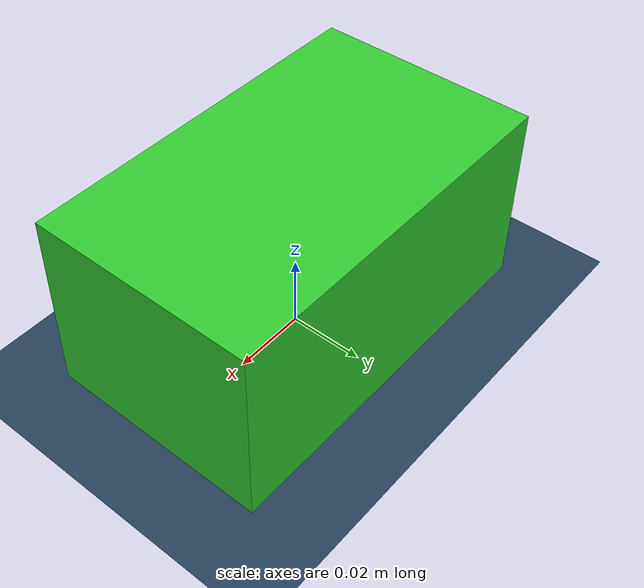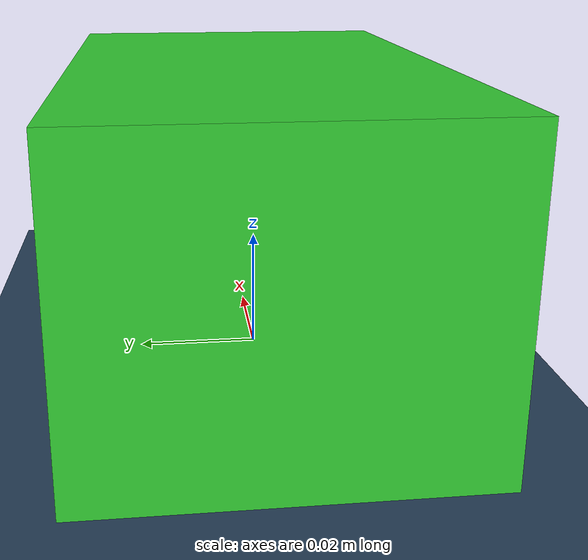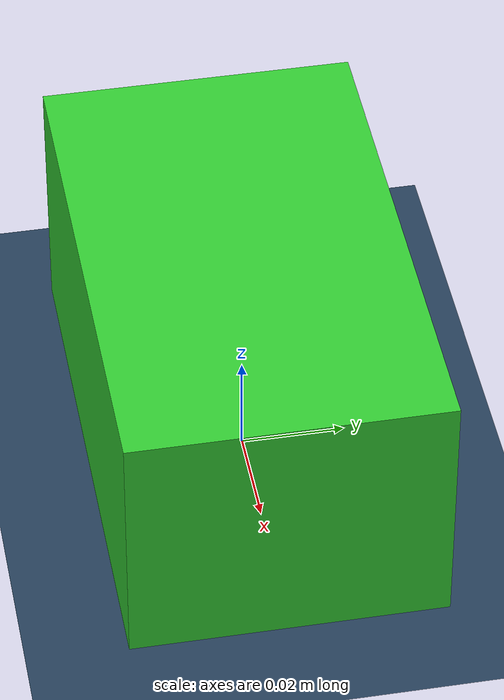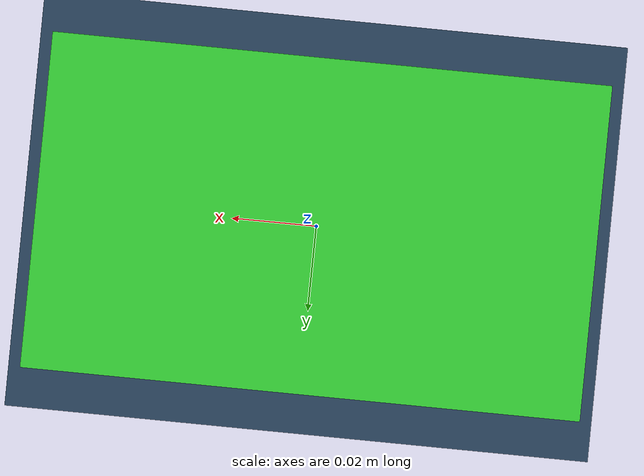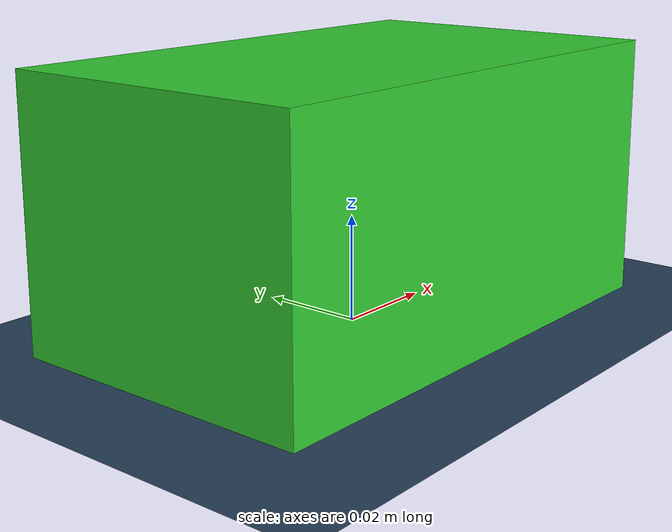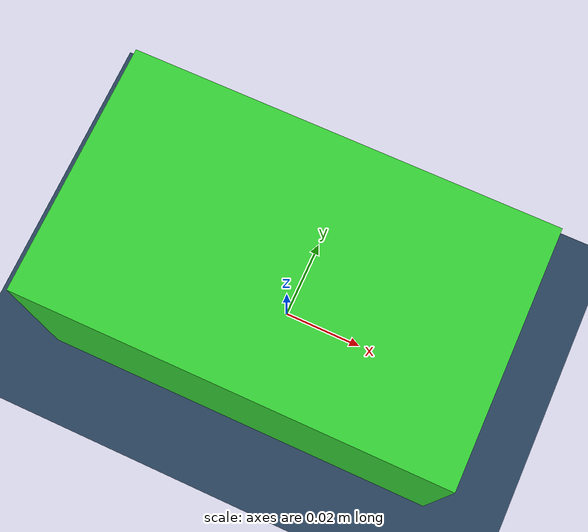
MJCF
<mujoco model="planar_peg_base">
    <compiler coordinate="local" angle="degree"/>

    <option timestep="0.02" integrator="RK4">
        <flag warmstart="enable"/>
    </option>

    <default>
        <!-- Use highly stiff contact solver parameters for rigid body collisions -->
        <geom condim="3" friction="1.0 0.005 0.0001" margin="0.0" solref="0.002 1.0" solimp="0.99 0.99 0.01" density="1000"/>
        <joint damping="10.0" armature="0.05"/>
    </default>

    <asset>
        <texture type="2d" name="groundplane" builtin="checker" rgb1="0.2 0.3 0.4" rgb2="0.1 0.2 0.3" width="400" height="400"/>
        <material name="groundplane" texture="groundplane" texuniform="true" texrepeat="5 5"/>
    </asset>

    <worldbody>
        <!-- Lighting (Directional light for uniform brightness across the entire map) -->
        <light cutoff="100" diffuse="0.7 0.7 0.7" dir="-0 0 -1.3" directional="true" exponent="1" pos="0 0 1.3" specular=".1 .1 .1"/>

        <!-- Floor -->
        <geom name="floor" type="plane" size="5 5 0.1" material="groundplane" condim="3"/>

        <!-- Top-view Camera (Static in Worldbody) -->
        <camera name="top" pos="0.0 0.0 2.4" fovy="50"/>

        <!-- Mocap Target Body (Visual target for control, hidden from cameras) -->
        <body name="mocap" mocap="true" pos="0 0 0.025">
            <geom type="box" size="0.05 0.03 0.025" rgba="1 0.8 0 0" conaffinity="0" contype="0"/>
        </body>

        <!-- Actual Agent Body (3-DoF Planar) -->
        <body name="agent" pos="0 0 0.025">
            <!-- 3-DoF Joint Constraints for Planar Motion -->
            <joint name="agent_x" type="slide" axis="1 0 0" range="-3 3" limited="true" damping="20.0" armature="0.1"/>
            <joint name="agent_y" type="slide" axis="0 1 0" range="-3 3" limited="true" damping="20.0" armature="0.1"/>
            <joint name="agent_rz" type="hinge" axis="0 0 1" range="-180 180" limited="true" damping="5.0" armature="0.05"/>

            <!-- Agent Visual & Collision Geometry -->
            <geom name="agent_geom" type="box" size="0.05 0.03 0.025" rgba="0.2 0.8 0.2 1.0" condim="3"/>

            <!-- Front-view Camera (Mounted halfway to front, angled 20 deg down) -->
            <camera name="front" pos="0.0 0 0.08" xyaxes="0 -1 0 0.342 0 0.940" fovy="70"/>
        </body>
    </worldbody>

    <equality>
        <!-- Weld constraint for impedance-like control via mocap body -->
        <weld body1="mocap" body2="agent" solref="0.06 1.0" solimp="0.3 0.7 0.001 0.5 2"/>
    </equality>
</mujoco>
